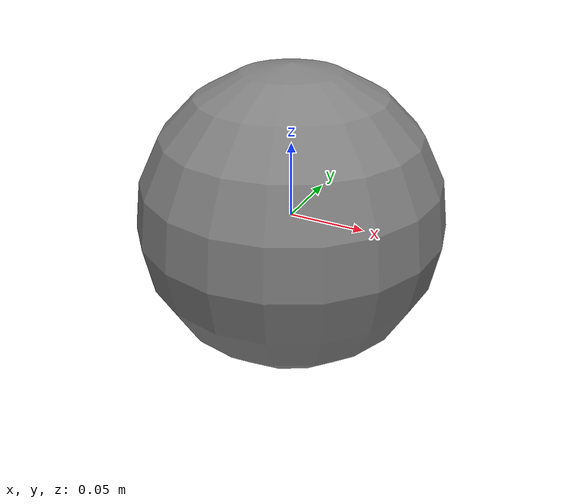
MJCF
<mujoco model="hole">
    <asset>
<!-- use scaling z=3.5 (name10/11=3.45,name12/13=3.4) -->
<!--
 for a hole of 22mm use 5.3 (and 3scaling for the shrinked part. i think it better to use 0.6 factor which lead to 3.2
-->
<!--
 for hole of 12mm use scale=3.1 3.1 3.5 (and 3.1 2.9 3.45 and 2.9 2.9 3.4 for the last lines)
-->
<!--
 for hole of 10mm use scale=2.6 2.6 3.5 (and 2.6 2.0 3.45 and 2.0 2.0 3.4 for the last lines)
-->
        <mesh file="meshes/object/Sphere_hull_1.stl" name="1" scale="2.6 2.6 3.5"/>
        <mesh file="meshes/object/Cube_hull_1.stl" name="2" scale="2.6 2.6 3.5"/>
        <mesh file="meshes/object/Cube_hull_2.stl" name="3" scale="2.6 2.6 3.5"/>
        <mesh file="meshes/object/Cube_hull_3.stl" name="4" scale="2.6 2.6 3.5"/>
        <mesh file="meshes/object/Cube_hull_4.stl" name="5" scale="2.6 2.6 3.5"/>
        <mesh file="meshes/object/Cube_hull_5.stl" name="6" scale="2.6 2.6 3.5"/>
        <mesh file="meshes/object/Cube_hull_6.stl" name="7" scale="2.6 2.6 3.5"/>
        <mesh file="meshes/object/Cube_hull_7.stl" name="8" scale="2.6 2.6 3.5"/>
        <mesh file="meshes/object/Cube_hull_8.stl" name="9" scale="2.6 2.6 3.5"/>
        <mesh file="meshes/object/Cube_001_hull_1.stl" name="10" scale="2.6 2.0 3.45"/>
        <!-- along +X-axis -->
        <mesh file="meshes/object/Cube_002_hull_1.stl" name="11" scale="2.6 2.0 3.45"/>
        <!-- along -X-axis -->
        <mesh file="meshes/object/Cube_003_hull_1.stl" name="12" scale="2.0 2.0 3.4"/>
        <!-- along -Y-axis -->
        <mesh file="meshes/object/Cube_004_hull_1.stl" name="13" scale="2.0 2.0 3.4"/>
        <!-- along +Y-axis -->
        <texture file="../textures/ceramic.png" name="tex-ceramic"/>
        <material name="ceramic" reflectance="0.5" texrepeat="1 1" texture="tex-ceramic" texuniform="true"/>
    </asset>
    <worldbody>
        <body>
            <body name="object">
                <geom pos="0 0 0" mesh="2" type="mesh" solimp="0.998 0.998 0.001" solref="0.001 1" density="6700" friction="0.95 0.3 0.1" material="ceramic" group="1" condim="4" rgba="0 1 0 1"/>
                <geom pos="0 0 0" mesh="3" type="mesh" solimp="0.998 0.998 0.001" solref="0.001 1" density="6700" friction="0.95 0.3 0.1" material="ceramic" group="1" condim="4" rgba="0 1 0 1"/>
                <geom pos="0 0 0" mesh="4" type="mesh" solimp="0.998 0.998 0.001" solref="0.001 1" density="6700" friction="0.95 0.3 0.1" material="ceramic" group="1" condim="4" rgba="0 1 0 1"/>
                <geom pos="0 0 0" mesh="5" type="mesh" solimp="0.998 0.998 0.001" solref="0.001 1" density="6700" friction="0.95 0.3 0.1" material="ceramic" group="1" condim="4" rgba="0 1 0 1"/>
                <geom pos="0 0 0" mesh="6" type="mesh" solimp="0.998 0.998 0.001" solref="0.001 1" density="6700" friction="0.95 0.3 0.1" material="ceramic" group="1" condim="4" rgba="0 1 0 1"/>
                <geom pos="0 0 0" mesh="7" type="mesh" solimp="0.998 0.998 0.001" solref="0.001 1" density="6700" friction="0.95 0.3 0.1" material="ceramic" group="1" condim="4" rgba="0 1 0 1"/>
                <geom pos="0 0 0" mesh="8" type="mesh" solimp="0.998 0.998 0.001" solref="0.001 1" density="6700" friction="0.95 0.3 0.1" material="ceramic" group="1" condim="4" rgba="0 1 0 1"/>
                <geom pos="0 0 0" mesh="9" type="mesh" solimp="0.998 0.998 0.001" solref="0.001 1" density="6700" friction="0.95 0.3 0.1" material="ceramic" group="1" condim="4" rgba="0 1 0 1"/>
                <geom pos="0 0 0" mesh="10" type="mesh" solimp="0.998 0.998 0.001" solref="0.001 1" density="6700" friction="0.95 0.3 0.1" material="ceramic" group="1" condim="4" rgba="0 1 0 1"/>
                <geom pos="0 0 0" mesh="11" type="mesh" solimp="0.998 0.998 0.001" solref="0.001 1" density="6700" friction="0.95 0.3 0.1" material="ceramic" group="1" condim="4" rgba="0 1 0 1"/>
                <geom pos="0 0 0" mesh="12" type="mesh" solimp="0.998 0.998 0.001" solref="0.001 1" density="6700" friction="0.95 0.3 0.1" material="ceramic" group="1" condim="4" rgba="0 1 0 1"/>
                <geom pos="0 0 0" mesh="13" type="mesh" solimp="0.998 0.998 0.001" solref="0.001 1" density="6700" friction="0.95 0.3 0.1" material="ceramic" group="1" condim="4" rgba="0 1 0 1"/>
                <site name="middle_cylinder" pos="0.000 0.000 0.0" size="0.1 0.1 0.1"/>
                <body name="hole" pos="0.00 0.000 0">
                    <geom density="3000" friction="1.0 0.005 0.0001" group="1" name="hole" rgba="1 0 0 1" size="0.001 0.001 0.001" type="box"/>
                </body>
            </body>
        <body name="visual"> </body>
        <site rgba="0 0 0 0" size="0.005" pos="0 0 -0.02" name="bottom_site"/>
        <site rgba="0 0 0 0" size="0.005" pos="0 0 0.02" name="top_site"/>
        <site rgba="0 0 0 0" size="0.005" pos="0.25 0.25 0.1" name="horizontal_radius_site"/>
        </body>
    </worldbody>
</mujoco>
